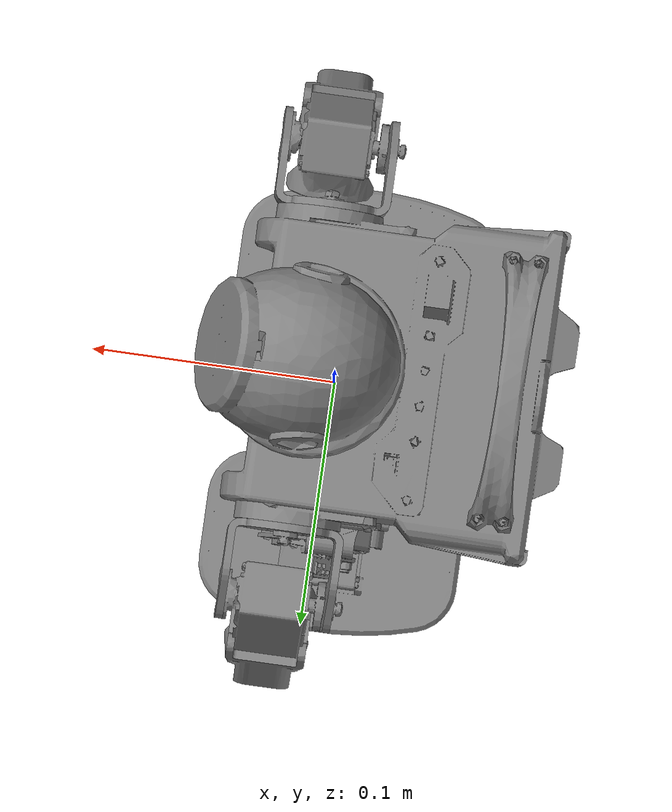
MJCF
<?xml version='1.0' encoding='utf-8'?>
<mujoco model="Roki4">
  <compiler angle="radian" meshdir="assets/" autolimits="true" />
  <default>
    <default class="microban">
      <joint frictionloss="0.1" armature="0.023"/>
      <position kp="50" dampratio="1" />
      <default class="visual">
        <geom type="mesh" contype="0" conaffinity="0" group="2" />
      </default>
      <default class="collision">
        <geom group="3" />
      </default>
    </default>
    <default class="SKS2401">
      <joint damping="0.041" frictionloss="0.013" armature="0.023" />
      <position kp="0.78" kv="0.0" forcerange="-2.5 2.5"/>
    </default>
  </default>
  <sensor>
    <framequat name="orientation" objtype="site" noise="0.001" objname="imu" />
    <gyro name="angular-velocity" site="imu" noise="0.005" />
    <gyro name="imu_ang_vel" site="imu" />
    <velocimeter name="imu_lin_vel" site="imu" />
    <accelerometer name="imu_accel" site="imu" />
    <subtreeangmom name="root_angmom" body="trunk" />
  </sensor>

  <asset>
    <mesh name="Trunk" content_type="model/stl" file="R4_robot_base.stl" />
    <mesh name="Hip_Yaw_Right" content_type="model/stl" file="R4_Hip_Yaw_Right.stl" />
    <mesh name="Lever_Right" content_type="model/stl" file="R4_Lever_Right.stl" />
    <mesh name="Hip_Right" content_type="model/stl" file="R4_Hip_Right.stl" />
    <mesh name="Shin_Right" content_type="model/stl" file="R4_Shin_Right.stl" />
    <mesh name="Lever2_Right" content_type="model/stl" file="R4_Lever2_Right.stl" />
    <mesh name="Foot_Right" content_type="model/stl" file="R4_Foot_Right.stl" />
    <mesh name="Shoulder_Right" content_type="model/stl" file="R4_Shoulder_Right.stl" />
    <mesh name="Hand_Right" content_type="model/stl" file="R4_Hand_Right.stl" />
    <mesh name="Hip_Yaw_Left_mirrored" file="R4_Hip_Yaw_Right.stl" scale="1 -1 1" />
    <mesh name="Lever_Left_mirrored" file="R4_Lever_Right.stl" scale="1 -1 1" />
    <mesh name="Hip_Left_mirrored" file="R4_Hip_Right.stl" scale="1 -1 1" />
    <mesh name="Shin_Left_mirrored" file="R4_Shin_Right.stl" scale="1 -1 1" />
    <mesh name="Lever2_Left_mirrored" file="R4_Lever2_Right.stl" scale="1 -1 1" />
    <mesh name="Foot_Left_mirrored" file="R4_Foot_Right.stl" scale="1 -1 1" />
    <mesh name="Shoulder_Left_mirrored" file="R4_Shoulder_Right.stl" scale="1 -1 1" />
    <mesh name="Hand_Left_mirrored" file="R4_Hand_Right.stl" scale="-1 1 1" />
  </asset>

  <worldbody>
    <body name="trunk" pos="0 0 0" quat="1 0 0 0" childclass="microban">
      <inertial pos="-0.010794 -0.000037 0.081485" mass="1.126000" fullinertia="2.339248e-03 2.439767e-03 1.734335e-03 -1.349037e-06 -7.075863e-05 6.193725e-06" />
      <freejoint name="trunk_freejoint" />
      <geom name="Trunk_visual" class="visual" pos="0.0 0.0 0.073383" quat="1 0 0 0" type="mesh" mesh="Trunk" />
      <geom name="Trunk_primitive1" class="collision" size="0.0385" pos="0.015 0.0 0.163383" quat="1 0 0 0" />
      <geom name="Trunk_primitive2" class="collision" size="0.037 0.0185" pos="0.01 0.0 0.123383" quat="1 0 0 0" type="cylinder" />
      <geom name="Trunk_primitive3" class="collision" size="0.025 0.065 0.04" pos="-0.065 0.0 0.103383" quat="1 0 0 0" type="box" />
      <geom name="Trunk_primitive4" class="collision" size="0.0275 0.01 0.0125" pos="0.0 0.025 0.019383" quat="1 0 0 0" type="box" />
      <geom name="Trunk_primitive5" class="collision" size="0.0275 0.01 0.0125" pos="0.0 -0.025 0.019383" quat="1 0 0 0" type="box" />
      <geom name="Trunk_primitive6" class="collision" size="0.035 0.06 0.04" pos="0.0 0.0 0.073383" quat="1 0 0 0" type="box" />
      <site group="3" name="body" pos="0.0 0.0 0" quat="1 0 0 0" />
      <site group="3" name="imu" pos="0.01483 0 0.0675" quat="0.5 -0.5 -0.5 0.5" />

      <body name="Hip_Yaw_Right" pos="-0.007375 -0.0252 0.000000" quat="1 0 0 0">
        <inertial pos="0.000125 -0.010642 -0.016887" mass="0.070000" fullinertia="1.227901e-05 8.233559e-06 1.407228e-05 2.044236e-07 -6.884329e-08 -7.906122e-07" />
        <joint name="right_hip_yaw" type="hinge" pos="0 0 0" axis="0 0 1" range="-1 1" class="SKS2401"/>
        <geom name="Hip_Yaw_Right_visual" class="visual" pos="0 0.003 -0.016617" quat="1 0 0 0" type="mesh" mesh="Hip_Yaw_Right" />
        <geom name="Hip_Yaw_Right_primitive" class="collision" size="0.01 0.01 0.01" pos="0 0.003 -0.016617" quat="1 0 0 0" type="box" />
        <body name="Lever_Right" pos="0 -0.021475 -0.019108" quat="0.70710678 0 0.70710678 0">
          <inertial pos="0.019000 0.000001 -0.000049" mass="0.015000" fullinertia="4.148207e-06 3.533191e-06 3.533191e-06 0.000000e+00 0.000000e+00 1.882862e-20" />
          <joint name="right_hip_roll" type="hinge" pos="0 0 0" axis="0 0 1" range="-0.6 0.22" class="SKS2401"/>
          <geom name="Lever_Right_visual" class="visual" pos="0.019509 0.001675 0.007375" quat="0.70710678 0 -0.70710678 0" type="mesh" mesh="Lever_Right" />
          <geom name="Lever_Right_primitive" contype="0" conaffinity="0" size="0.01 0.01 0.015" pos="0.019509 0.001675 0.007375" quat="0.70710678 0 -0.70710678 0" type="box" />
          <body name="Hip_Right" pos="0.038 0 -5e-05" quat="0.5 -0.5 -0.5 -0.5">
            <inertial pos="0.004115 0.033392 -0.000886" mass="0.145000" fullinertia="8.154839e-05 2.127431e-05 7.616962e-05 3.251230e-07 1.021965e-06 1.089038e-07" />
            <joint name="right_hip_pitch" type="hinge" pos="0 0 0" axis="0 0 1" range="-2.26 2.26" class="SKS2401"/>
            <geom name="Hip_Right_visual" class="visual" pos="0.007425 0.032509 0.001675" quat="-0.70710678 -0.70710678 0 0" type="mesh" mesh="Hip_Right" />
            <geom name="Hip_Right_primitive" class="collision" size="0.01 0.02 0.025" pos="0.007425 0.032509 -0.003325" quat="-0.70710678 -0.70710678 0 0" type="box" />
            <body name="Shin_Right" pos="0 0.063907 0" quat="1 0 0 0">
              <inertial pos="0.004395 0.043533 0.000149" mass="0.078000" fullinertia="3.258242e-05 1.042775e-05 2.865758e-05 3.827456e-06 4.519597e-08 -1.172563e-07" />
              <joint name="right_knee" type="hinge" pos="0 0 0" axis="0 0 1" range="-0.5 2.5" class="SKS2401"/>
              <geom name="Shin_Right_visual" class="visual" pos="0.007425 0.030602 0.001675" quat="0.70710678 0.70710678 0 0" type="mesh" mesh="Shin_Right" />
              <geom name="Shin_Right_primitive" class="collision" size="0.01 0.01 0.025" pos="0.007425 0.030602 0.001675" quat="0.70710678 0.70710678 0 0" type="box" />
              <body name="Lever2_Right" pos="0 0.063902 0" quat="-1 0 0 0">
                <inertial pos="0.000001 0.019000 -0.000051" mass="0.015000" fullinertia="3.533191e-06 4.148207e-06 3.533191e-06 2.046736e-20 0 0" />
                <joint name="right_ankle_pitch" type="hinge" pos="0 0 0" axis="0 0 1" range="-1.5 2.2" class="SKS2401"/>
                <geom name="Lever2_Right_visual" class="visual" pos="0.007425 0.019 0.001675" quat="0.70710678 0.70710678 0 0" type="mesh" mesh="Lever2_Right" />
                <geom name="Lever2_Right_primitive" class="collision" size="0.01 0.01 0.015" pos="0.007425 0.019 0.001675" quat="0.70710678 0.70710678 0 0" type="box" />
                <body name="foot" pos="0 0.038 -5e-05" quat="0 -0.70710678 0 -0.70710678">
                  <inertial pos="-0.012003 -0.012362 0.000176" mass="0.133000" fullinertia="8.292642e-05 1.078791e-04 4.703554e-05 -1.814908e-06 -1.987411e-07 1.076699e-08" />
                  <joint name="right_ankle_roll" type="hinge" pos="0 0 0" axis="0 0 1" range="-0.35 1.45" class="SKS2401"/>
                  <geom name="Foot_Right_visual" class="visual" pos="-0.012775 -0.0212 0.000425" quat="0.5 -0.5 -0.5 -0.5" type="mesh" mesh="Foot_Right" />
                  <geom name="right_foot_collision_1" class="collision" size="0.0175 0.0025" pos="-0.030275 -0.0212 -0.038575" quat="0.5 -0.5 -0.5 -0.5" type="cylinder" />
                  <geom name="right_foot_collision_2" class="collision" size="0.0175 0.0025" pos="0.004725 -0.0212 -0.038575" quat="0.5 -0.5 -0.5 -0.5" type="cylinder" />
                  <geom name="right_foot_collision_3" class="collision" size="0.0175 0.0025" pos="0.004725 -0.0212 0.039425" quat="0.5 -0.5 -0.5 -0.5" type="cylinder" />
                  <geom name="right_foot_collision_4" class="collision" size="0.039 0.035 0.0025" pos="-0.012775 -0.0212 0.000425" quat="0.5 -0.5 -0.5 -0.5" type="box" />
                  <geom name="right_foot_collision_5" class="collision" size="0.0175 0.0025" pos="-0.030275 -0.0212 0.039425" quat="0.5 -0.5 -0.5 -0.5" type="cylinder" />
                  <geom name="right_foot_collision_6" class="collision" size="0.0565 0.0175 0.0025" pos="-0.012775 -0.0212 0.000425" quat="0.5 -0.5 -0.5 -0.5" type="box" />
                  <site group="3" name="right_foot" pos="-0.012775 -0.0237 0.000425" quat="0.5 -0.5 -0.5 -0.5"/>
                </body>
              </body>
            </body>
          </body>
        </body>
      </body>

      <body name="Hip_Yaw_Left" pos="-0.007375 0.0252 0.000000" quat="0 0 0 1">
        <inertial pos="-0.000125 -0.010642 -0.016887" mass="0.070000" fullinertia="1.227901e-05 8.233559e-06 1.407228e-05 -2.044236e-07 6.884329e-08 -7.906122e-07" />
        <joint name="left_hip_yaw" type="hinge" pos="0 0 0" axis="0 0 1" range="-1 1" class="SKS2401"/>
        <geom name="Hip_Yaw_Left_visual" class="visual" pos="0 0.003 -0.016617" quat="0 0 0 1" type="mesh" mesh="Hip_Yaw_Left_mirrored" />
        <geom name="Hip_Yaw_Left_primitive" class="collision" size="0.01 0.01 0.01" pos="0 0.003 -0.016617" quat="0 0 0 1" type="box" />
        <body name="Lever_Left" pos="0 -0.021475 -0.019108" quat="0 -0.70710678 0 0.70710678">
          <inertial pos="0.019000 -0.000001 -0.000049" mass="0.015000" fullinertia="4.148207e-06 3.533191e-06 3.533191e-06 0.000000e+00 0.000000e+00 1.882862e-20" />
          <joint name="left_hip_roll" type="hinge" pos="0 0 0" axis="0 0 1" range="-0.22 0.6" class="SKS2401"/>
          <geom name="Lever_Left_visual" class="visual" pos="0.019509 -0.001675 0.007375" quat="0.70710678 0 -0.70710678 0" type="mesh" mesh="Lever_Left_mirrored" />
          <geom name="Lever_Left_primitive" contype="0" conaffinity="0" size="0.01 0.01 0.015" pos="0.019509 -0.001675 0.007375" quat="0.70710678 0 -0.70710678 0" type="box" />
          <body name="Hip_Left" pos="0.038 0 5e-05" quat="-0.5 0.5 0.5 0.5">
            <inertial pos="0.004115 0.033392 0.004236" mass="0.145000" fullinertia="8.154839e-05 2.127431e-05 7.616962e-05 3.251230e-07 -1.021965e-06 -1.089038e-07" />
            <joint name="left_hip_pitch" type="hinge" pos="0 0 0" axis="0 0 1" range="-2.26 2.26" class="SKS2401"/>
            <geom name="Hip_Left_visual" class="visual" pos="0.007425 0.032509 0.001675" quat="-0.70710678 -0.70710678 0 0" type="mesh" mesh="Hip_Left_mirrored" />
            <geom name="Hip_Left_primitive" class="collision" size="0.01 0.02 0.025" pos="0.007425 0.032509 0.006675" quat="-0.70710678 -0.70710678 0 0" type="box" />
            <body name="Shin_Left" pos="0 0.063907 0" quat="-1 0 0 0">
              <inertial pos="0.004395 0.043533 0.003201" mass="0.078000" fullinertia="3.258242e-05 1.042775e-05 2.865758e-05 3.827456e-06 -4.519597e-08 1.172563e-07" />
              <joint name="left_knee" type="hinge" pos="0 0 0" axis="0 0 1" range="-0.5 2.5" class="SKS2401"/>
              <geom name="Shin_Left_visual" class="visual" pos="0.007425 0.030602 0.001675" quat="-0.70710678 -0.70710678 0 0" type="mesh" mesh="Shin_Left_mirrored" />
              <geom name="Shin_Left_primitive" class="collision" size="0.01 0.01 0.025" pos="0.007425 0.030602 0.001675" quat="-0.70710678 -0.70710678 0 0" type="box" />
              <body name="Lever2_Left" pos="0 0.063902 0" quat="-1 0 0 0">
                <inertial pos="0.000001 0.019000 0.003401" mass="0.015000" fullinertia="3.533191e-06 4.148207e-06 3.533191e-06 2.046736e-20 0 0" />
                <joint name="left_ankle_pitch" type="hinge" pos="0 0 0" axis="0 0 1" range="-1.5 2.2" class="SKS2401"/>
                <geom name="Lever2_Left_visual" class="visual" pos="0.007425 0.019 0.001675" quat="0.70710678 0.70710678 0 0" type="mesh" mesh="Lever2_Left_mirrored" />
                <geom name="Lever2_Left_primitive" class="collision" size="0.01 0.01 0.015" pos="0.007425 0.019 0.001675" quat="0.70710678 0.70710678 0 0" type="box" />
                <body name="foot_2" pos="0 0.038 5e-05" quat="0 0.70710678 0 0.70710678">
                  <inertial pos="0.012003 -0.012362 -0.000674" mass="0.133000" fullinertia="8.292642e-05 1.078791e-04 4.703554e-05 1.814908e-06 1.987411e-07 1.076699e-08" />
                  <joint name="left_ankle_roll" type="hinge" pos="0 0 0" axis="0 0 1" range="-1.45 0.35" class="SKS2401"/>
                  <geom name="Foot_Left_visual" class="visual" pos="0.012775 -0.0212 -0.000425" quat="0.5 -0.5 -0.5 -0.5" type="mesh" mesh="Foot_Left_mirrored" />
                  <geom name="left_foot_collision_1" class="collision" size="0.0175 0.0025" pos="0.030275 -0.0212 0.038575" quat="0.5 -0.5 -0.5 -0.5" type="cylinder" />
                  <geom name="left_foot_collision_2" class="collision" size="0.0175 0.0025" pos="-0.004725 -0.0212 0.038575" quat="0.5 -0.5 -0.5 -0.5" type="cylinder" />
                  <geom name="left_foot_collision_3" class="collision" size="0.0175 0.0025" pos="-0.004725 -0.0212 -0.039425" quat="0.5 -0.5 -0.5 -0.5" type="cylinder" />
                  <geom name="left_foot_collision_4" class="collision" size="0.039 0.035 0.0025" pos="0.012775 -0.0212 -0.000425" quat="0.5 -0.5 -0.5 -0.5" type="box" />
                  <geom name="left_foot_collision_5" class="collision" size="0.0175 0.0025" pos="0.030275 -0.0212 -0.039425" quat="0.5 -0.5 -0.5 -0.5" type="cylinder" />
                  <geom name="left_foot_collision_6" class="collision" size="0.0565 0.0175 0.0025" pos="0.012775 -0.0212 -0.000425" quat="0.5 -0.5 -0.5 -0.5" type="box" />
                  <site group="3" name="left_foot" pos="0.012775 -0.0237 -0.000425" quat="0.5 -0.5 -0.5 -0.5"/>
                </body>
              </body>
            </body>
          </body>
        </body>
      </body>

      <body name="Shoulder_Right" pos="0.010475 -0.0627 0.089592" quat="0.70710678 -0.70710678 0 0">
        <inertial pos="0.000241 0.006836 -0.016422" mass="0.017" fullinertia="3.645264e-06 5.507943e-06 5.411070e-06 6.431185e-08 3.672992e-08 1.062247e-06" />
        <joint name="right_shoulder_pitch" type="hinge" pos="0 0 0" axis="0 0 1" range="-3.14 1.54" class="SKS2401"/>
        <geom name="Shoulder_Right_visual" class="visual" pos="0 0 -0.0173" quat="0.70710678 0.70710678 0 0" type="mesh" mesh="Shoulder_Right" />
        <geom name="Shoulder_Right_primitive" class="collision" size="0.0125 0.0125 0.0125" pos="0 0 -0.0173" quat="0.70710678 0.70710678 0 0" type="box" />
        <body name="Hand_Right" pos="-0.0125 0.03 -0.03" quat="0.5 0.5 0.5 0.5">
          <inertial pos="0.066700 -0.008474 0.014595" mass="0.120" fullinertia="1.543555e-05 3.371695e-04 3.385880e-04 1.965517e-05 -5.852454e-06 5.542622e-07" />
          <joint name="right_shoulder_roll" type="hinge" pos="0 0 0" axis="0 0 1" range="-2.2 1" class="SKS2401"/>
          <geom name="Hand_Right_visual" class="visual" pos="0.0312 -0.0113 0.00688" quat="0.696364 -0.122788 -0.696364 -0.122788" type="mesh" mesh="Hand_Right" />
          <geom name="Hand_Right_primitive1" class="collision" size="0.019 0.0165" pos="0.1582 -0.0103 0.00688" quat="0.579228 0.40558 -0.579228 0.40558" type="cylinder" />
          <geom name="Hand_Right_primitive2" class="collision" size="0.01 0.01 0.05" pos="0.0962 -0.0173 0.00688" quat="0.70710678 0 -0.70710678 0" type="box" />
          <geom name="Hand_Right_primitive3" class="collision" size="0.01 0.01 0.019" pos="0.0312 -0.0113 0.00688" quat="0.696364 -0.122788 -0.696364 -0.122788" type="box" />
        </body>
      </body>

      <body name="Shoulder_Left" pos="0.010475 0.0627 0.089592" quat="-0.70710678 0.70710678 0 0">
        <inertial pos="0.000241 0.006836 0.016422" mass="0.017" fullinertia="3.645264e-06 5.507943e-06 5.411070e-06 6.431185e-08 -3.672992e-08 -1.062247e-06" />
        <joint name="left_shoulder_pitch" type="hinge" pos="0 0 0" axis="0 0 1" range="-3.14 1.54" class="SKS2401"/>
        <geom name="Shoulder_Left_visual" class="visual" pos="0 0 0.0173" quat="-0.70710678 -0.70710678 0 0" type="mesh" mesh="Shoulder_Left_mirrored" />
        <geom name="Shoulder_Left_primitive" class="collision" size="0.0125 0.0125 0.0125" pos="0 0 0.0173" quat="-0.70710678 -0.70710678 0 0" type="box" />
        <body name="Hand_Left" pos="-0.0125 0.03 0.03" quat="0.5 0.5 0.5 0.5">
          <inertial pos="0.066700 0.008474 0.014595" mass="0.120" fullinertia="1.543555e-05 3.371695e-04 3.385880e-04 -1.965517e-05 -5.852454e-06 -5.542622e-07" />
          <joint name="left_shoulder_roll" type="hinge" pos="0 0 0" axis="0 0 1" range="-1 2.2" class="SKS2401"/>
          <geom name="Hand_Left_visual" class="visual" pos="0.0312 0.0113 0.00688" quat="0.122788 0.696364 0.122788 -0.696364" type="mesh" mesh="Hand_Left_mirrored" />
          <geom name="Hand_Left_primitive1" class="collision" size="0.019 0.0165" pos="0.1582 0.0103 0.00688" quat="0.40558 -0.579228 0.40558 0.579228" type="cylinder" />
          <geom name="Hand_Left_primitive2" class="collision" size="0.01 0.01 0.05" pos="0.0962 0.0173 0.00688" quat="0 -0.70710678 0 0.70710678" type="box" />
          <geom name="Hand_Left_primitive3" class="collision" size="0.01 0.01 0.019" pos="0.0312 0.0113 0.00688" quat="0.122788 0.696364 0.122788 -0.696364" type="box" />
        </body>
      </body>
    </body>
  </worldbody>
  <actuator>
    <position class="SKS2401" name="right_shoulder_pitch" joint="right_shoulder_pitch" inheritrange="1"/>
    <position class="SKS2401" name="right_shoulder_roll" joint="right_shoulder_roll" inheritrange="1"/>
    <position class="SKS2401" name="right_hip_yaw" joint="right_hip_yaw" inheritrange="1"/>
    <position class="SKS2401" name="right_hip_roll" joint="right_hip_roll" inheritrange="1"/>
    <position class="SKS2401" name="right_hip_pitch" joint="right_hip_pitch" inheritrange="1"/>
    <position class="SKS2401" name="right_knee" joint="right_knee" inheritrange="1"/>
    <position class="SKS2401" name="right_ankle_pitch" joint="right_ankle_pitch" inheritrange="1"/>
    <position class="SKS2401" name="right_ankle_roll" joint="right_ankle_roll" inheritrange="1"/>
    <position class="SKS2401" name="left_shoulder_pitch" joint="left_shoulder_pitch" inheritrange="1"/>
    <position class="SKS2401" name="left_shoulder_roll" joint="left_shoulder_roll" inheritrange="1"/>
    <position class="SKS2401" name="left_hip_yaw" joint="left_hip_yaw" inheritrange="1"/>
    <position class="SKS2401" name="left_hip_roll" joint="left_hip_roll" inheritrange="1"/>
    <position class="SKS2401" name="left_hip_pitch" joint="left_hip_pitch" inheritrange="1"/>
    <position class="SKS2401" name="left_knee" joint="left_knee" inheritrange="1"/>
    <position class="SKS2401" name="left_ankle_pitch" joint="left_ankle_pitch" inheritrange="1"/>
    <position class="SKS2401" name="left_ankle_roll" joint="left_ankle_roll" inheritrange="1"/>
  </actuator>
  <equality/>
</mujoco>
